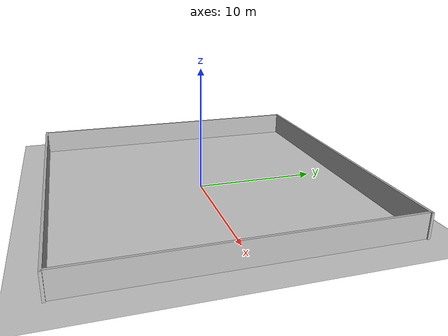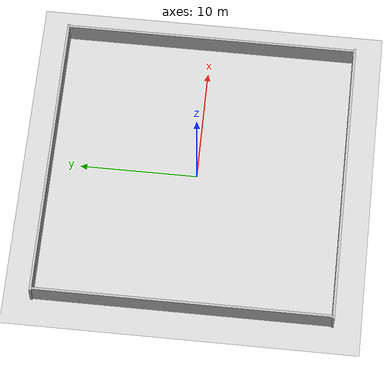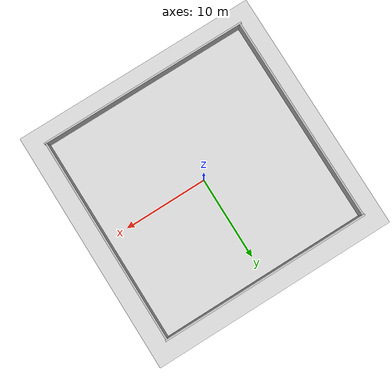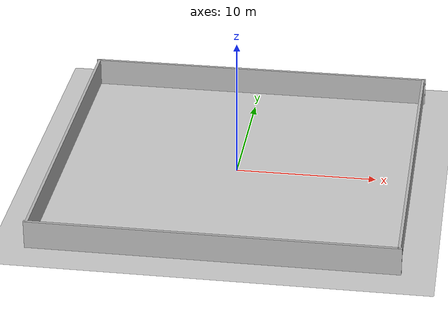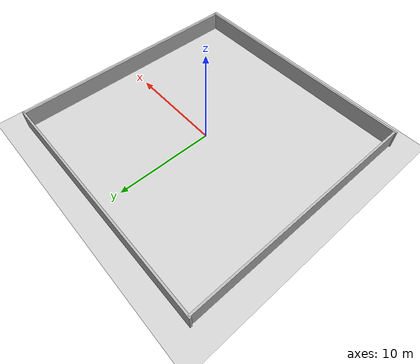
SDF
<?xml version="1.0" ?>
<sdf version='1.6'>
  <world name='gravel_featureless'>

    <!-- Gazebo State Publisher Plugin — unchanged -->
    <plugin name="gazebo_ros_state" filename="libgazebo_ros_state.so">
      <ros>
        <namespace></namespace>
        <remapping>model_states:=gazebo/model_states</remapping>
        <remapping>link_states:=gazebo/link_states</remapping>
      </ros>
      <update_rate>50.0</update_rate>
    </plugin>

    <include>
      <uri>model://sun</uri>
    </include>

    <include>
      <uri>model://ground_plane</uri>
    </include>

    <!-- Spherical coordinates — unchanged -->
    <spherical_coordinates>
      <surface_model>EARTH_WGS84</surface_model>
      <latitude_deg>37.4275</latitude_deg>
      <longitude_deg>-122.1697</longitude_deg>
      <elevation>0.0</elevation>
      <heading_deg>0.0</heading_deg>
    </spherical_coordinates>

    <!-- 25 × 25 m walled arena — no interior obstacles (featureless for Scenario 5).
         Four boundary walls only; everything else is identical to gravel_experiment.world. -->

    <!-- North Wall -->
    <model name="wall_north">
      <static>true</static>
      <pose>0 12.5 1 0 0 0</pose>
      <link name="link">
        <collision name="collision">
          <geometry><box><size>25.4 0.2 2</size></box></geometry>
        </collision>
        <visual name="visual">
          <geometry><box><size>25.4 0.2 2</size></box></geometry>
        </visual>
      </link>
    </model>

    <!-- South Wall -->
    <model name="wall_south">
      <static>true</static>
      <pose>0 -12.5 1 0 0 0</pose>
      <link name="link">
        <collision name="collision">
          <geometry><box><size>25.4 0.2 2</size></box></geometry>
        </collision>
        <visual name="visual">
          <geometry><box><size>25.4 0.2 2</size></box></geometry>
        </visual>
      </link>
    </model>

    <!-- East Wall -->
    <model name="wall_east">
      <static>true</static>
      <pose>12.5 0 1 0 0 0</pose>
      <link name="link">
        <collision name="collision">
          <geometry><box><size>0.2 25.0 2</size></box></geometry>
        </collision>
        <visual name="visual">
          <geometry><box><size>0.2 25.0 2</size></box></geometry>
        </visual>
      </link>
    </model>

    <!-- West Wall -->
    <model name="wall_west">
      <static>true</static>
      <pose>-12.5 0 1 0 0 0</pose>
      <link name="link">
        <collision name="collision">
          <geometry><box><size>0.2 25.0 2</size></box></geometry>
        </collision>
        <visual name="visual">
          <geometry><box><size>0.2 25.0 2</size></box></geometry>
        </visual>
      </link>
    </model>

    <gui fullscreen='0'>
      <camera name='user_camera'>
        <pose frame=''>25.0 -30.0 15.0 0.0 0.45 2.4</pose>
        <view_controller>orbit</view_controller>
        <projection_type>perspective</projection_type>
      </camera>
    </gui>

  </world>
</sdf>
